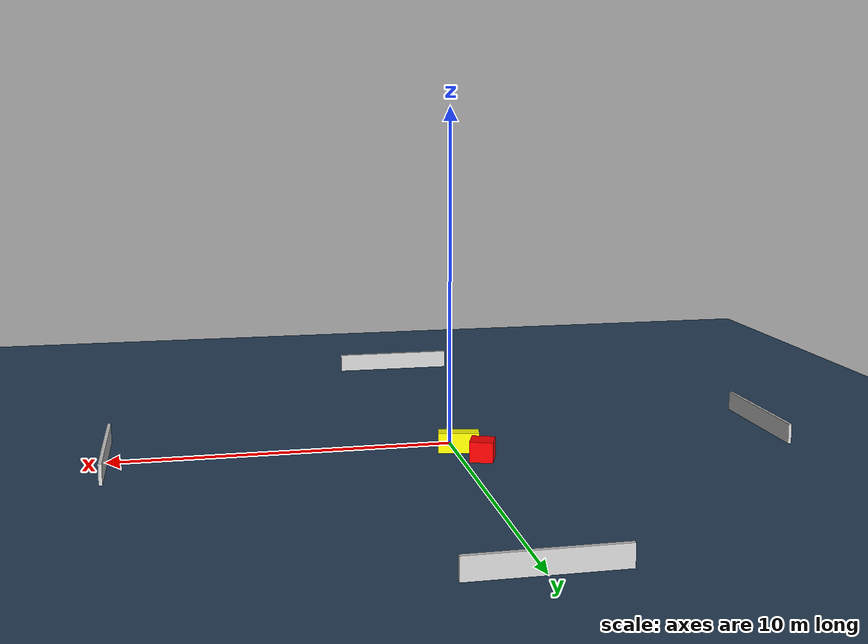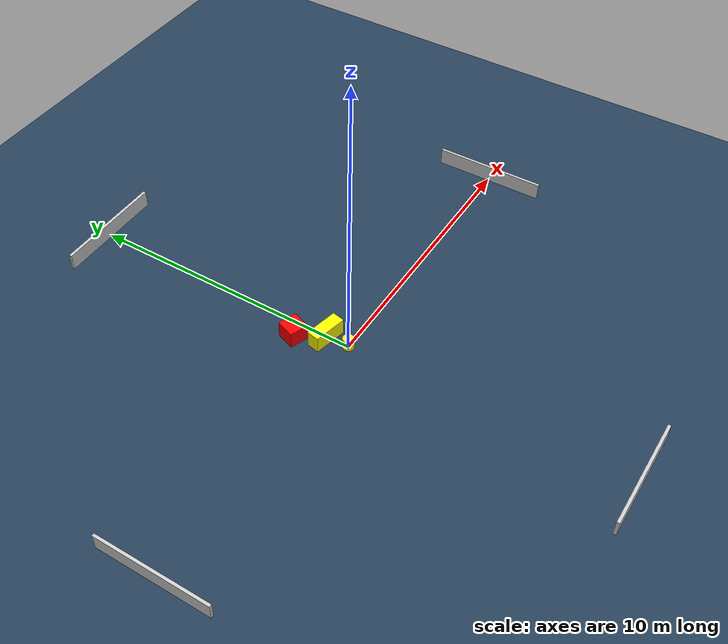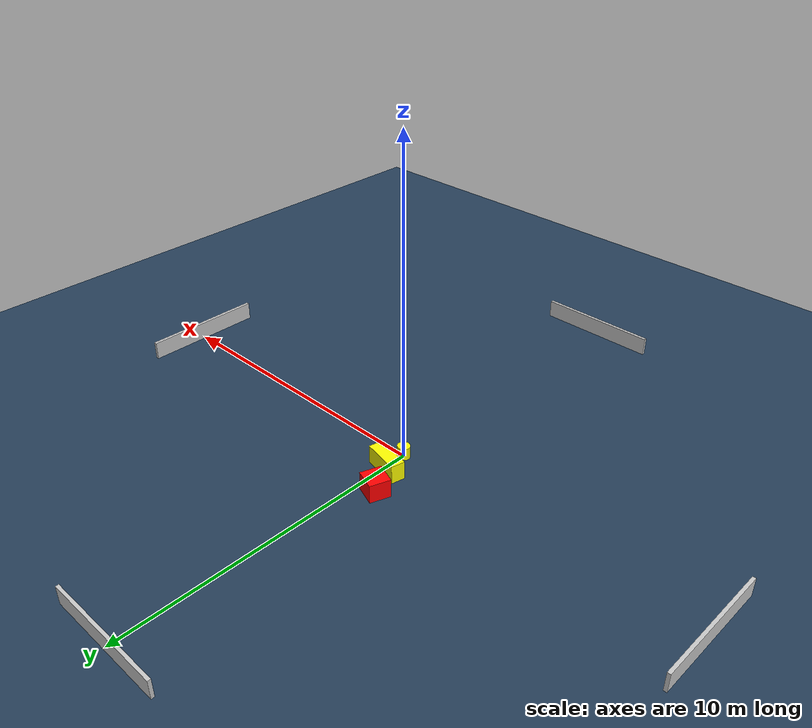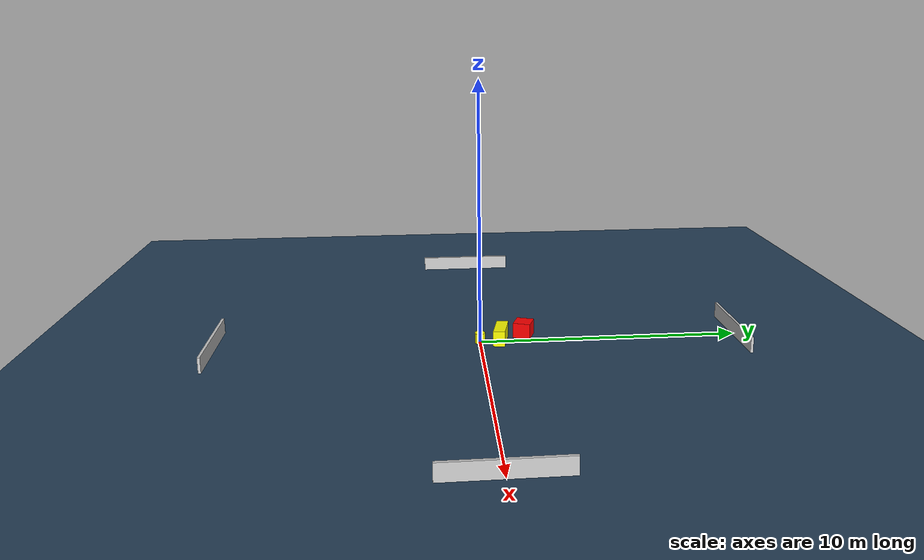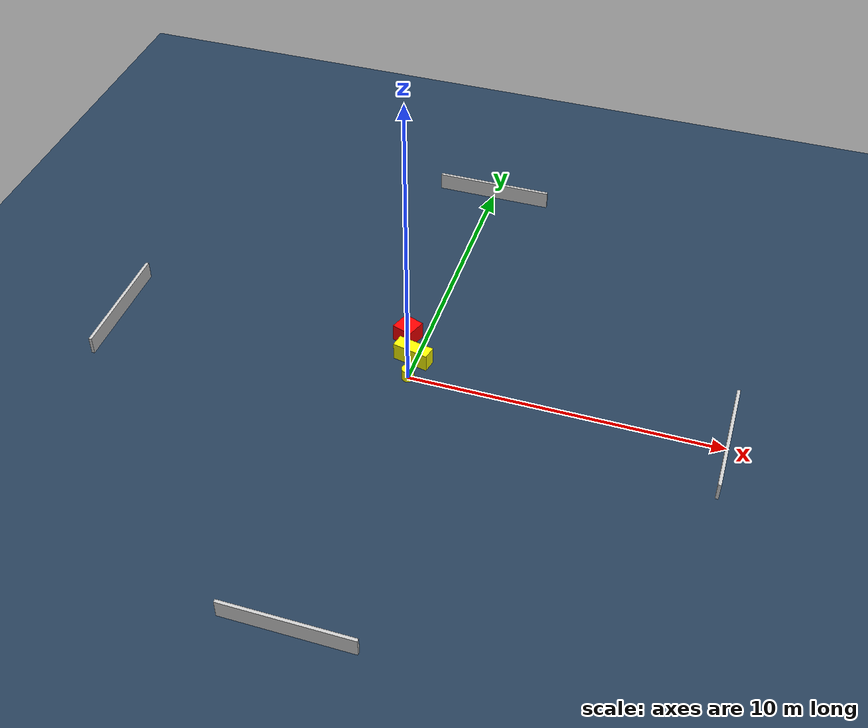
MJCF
<?xml version="1.0" ?>
<mujoco model="generated_environment">
  <option timestep="0.01" integrator="RK4" cone="elliptic"/>
  <default>
    <geom density="1"/>
  </default>
  <asset>
    <texture builtin="gradient" height="3072" name="skybox" rgb1="0.3 0.5 0.7" rgb2="0 0 0" type="skybox" width="512"/>
    <texture builtin="checker" height="300" name="groundplane" rgb1="0.2 0.3 0.4" rgb2="0.1 0.2 0.3" type="2d" width="300"/>
    <material name="groundplane" reflectance="0.2" texrepeat="5 5" texture="groundplane"/>
  </asset>
  <worldbody>
    <light dir="0 0 -1" directional="true" pos="0 0 1.5"/>
    <geom condim="3" friction="0.5 0.005 0.001" material="groundplane" name="floor" pos="0 0 0" size="0 0 0.05" type="plane"/>
    <body name="walls">
      <geom name="wall_1" condim="4" pos="-10.0 0.0 0.3" rgba="0.800000011920929 0.800000011920929 0.800000011920929 1.0" size="0.05 2.0 0.3" type="box"/>
      <geom name="wall_2" condim="4" pos="10.0 0.0 0.3" rgba="0.800000011920929 0.800000011920929 0.800000011920929 1.0" size="0.05 2.0 0.3" type="box"/>
      <geom name="wall_3" condim="4" pos="0.0 -10.0 0.3" rgba="0.800000011920929 0.800000011920929 0.800000011920929 1.0" size="2.0 0.05 0.3" type="box"/>
      <geom name="wall_4" condim="4" pos="0.0 10.0 0.3" rgba="0.800000011920929 0.800000011920929 0.800000011920929 1.0" size="2.0 0.05 0.3" type="box"/>
    </body>
    <body name="robot">
      <joint name="joint_x" type="slide" pos="0 0 0" axis="1 0 0"/>
      <joint name="joint_y" type="slide" pos="0 0 0" axis="0 1 0"/>
      <geom name="robot" type="cylinder" pos="0.0 0.0 0.2" size="0.2 0.2 0.0" mass="5.0" friction="1.0 0.005 0.0001" condim="4" rgba="1.0 1.0 0.0 1.0"/>
    </body>
    <body name="obstacle_1_movable">
      <geom name="obstacle_1_movable" condim="4" pos="-0.09141319718545825 0.811704288576248 0.3" euler="0 0 77.90349845764153" friction="0.0 0.005 0.001" rgba="1.0 1.0 0.0 1.0" size="0.2238245349443357 0.5972963686664274 0.3" type="box" mass="0.1"/>
      <joint type="free"/>
    </body>
    <body name="obstacle_2_static">
      <geom name="obstacle_2_static" condim="4" pos="-0.5781800623649852 1.7460725134654462 0.3" euler="0 0 339.7695791256518" friction="0.0 0.005 0.001" rgba="1.0 0.0 0.0 1.0" size="0.3422190564977775 0.33508248876314395 0.3" type="box"/>
    </body>
  </worldbody>
  <actuator>
    <motor name="actuator_x" joint="joint_x" gear="1" ctrlrange="-1 1"/>
    <motor name="actuator_y" joint="joint_y" gear="1" ctrlrange="-1 1"/>
  </actuator>
</mujoco>
